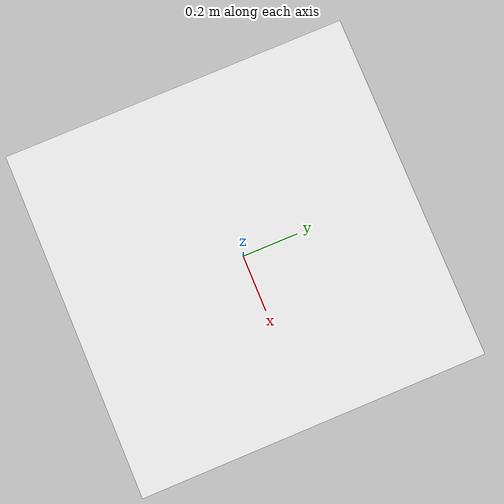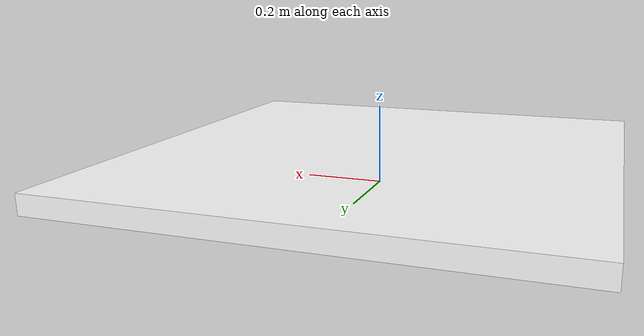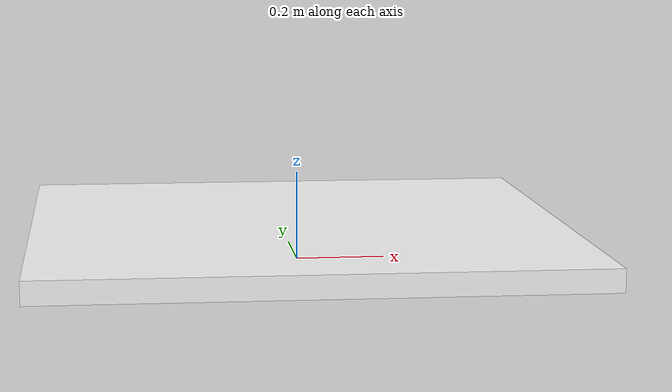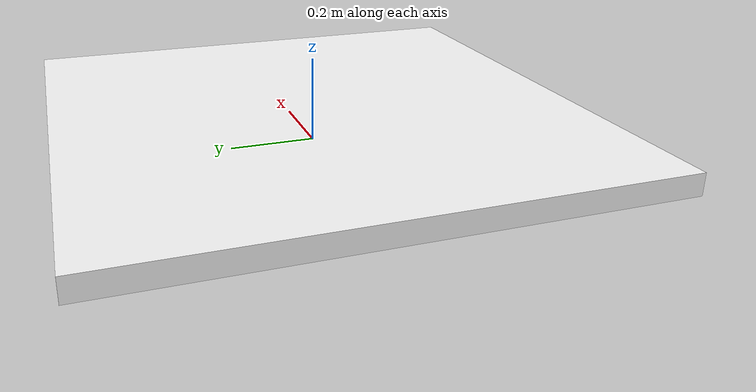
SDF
<?xml version="1.0" ?>
<sdf version="1.9">
  <model name="qr_marker_1">
    <static>true</static>
    <link name="link">
      <pose>0 0 0.06 0 0 0</pose>
      <collision name="collision">
        <geometry>
          <box><size>1.2 1.2 0.05</size></box>
        </geometry>
      </collision>
      <visual name="visual">
        <geometry>
          <box><size>1.2 1.2 0.05</size></box>
        </geometry>
        <material>
          <ambient>1 1 1 1</ambient>
          <diffuse>1 1 1 1</diffuse>
          <specular>0 0 0 1</specular>
          <emissive>0 0 0 0</emissive>
          <pbr>
            <metal>
              <albedo_map>model://qr_marker_1/materials/textures/qr_marker_1.png</albedo_map>
              <roughness>1.0</roughness>
              <metalness>0.0</metalness>
            </metal>
          </pbr>
        </material>
      </visual>
    </link>
  </model>
</sdf>
